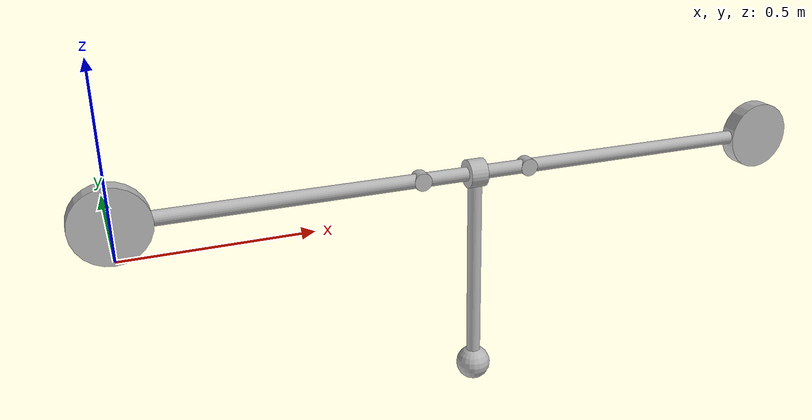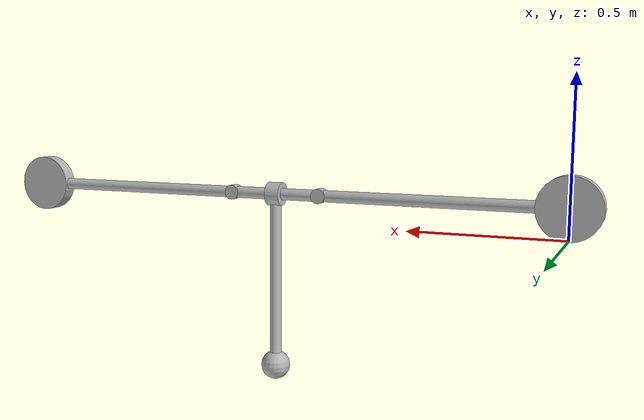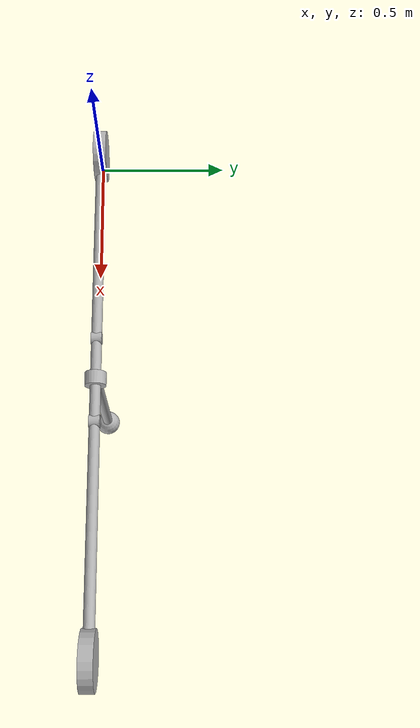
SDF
<?xml version='1.0' ?>

<sdf version='1.6'>
    <model name='Whabot'>
        <link name='back_wheel'>
            <pose>0 0 0.1 0 0 0</pose>
            <inertial>
                <mass>4.0</mass>
                <inertia>
                    <ixx>0.010833333333333335</ixx>
                    <iyy>0.020000000000000004</iyy>
                    <izz>0.010833333333333335</izz>
                    <ixy>0</ixy><ixz>0</ixz><iyz>0</iyz>
                </inertia>
            </inertial>
            <visual name='back_wheel_vis'>
                <pose>0 0 0 1.570795 0 0</pose>
                <geometry>
                    <cylinder>
                        <radius>0.1</radius>
                        <length>0.05</length>
                    </cylinder>
                </geometry>
            </visual>
            <collision name='back_wheel_col'>
                <pose>0 0 0 1.570795 0 0</pose>
                <geometry>
                    <cylinder>
                        <radius>0.1</radius>
                        <length>0.05</length>
                    </cylinder>
                </geometry>
            </collision>
        </link>

        <link name='link1'>
            <pose>0 0 0.1 0 0 0</pose>
            <inertial>
                <mass>0.1</mass>
                <inertia>
                    <ixx>1.0e-20</ixx>
                    <iyy>0.005333333333333334</iyy>
                    <izz>0.005333333333333334</izz>
                    <ixy>0</ixy><ixz>0</ixz><iyz>0</iyz>
                </inertia>
            </inertial>
            <visual name='link1_vis'>
                <pose>0.4 0 0 0 1.570795 0</pose>
                <geometry>
                    <cylinder>
                        <radius>0.02</radius>
                        <length>0.8</length>
                    </cylinder>
                </geometry>
            </visual>
        </link>

        <link name='motor1'>
            <pose>0.8 0 0.1 0 0 0</pose>
            <inertial>
                <mass>0.4</mass>
                <inertia>
                    <ixx>0.00011583333333333335</ixx>
                    <iyy>0.00012500000000000003</iyy>
                    <izz>0.00011583333333333335</izz>
                    <ixy>0</ixy><ixz>0</ixz><iyz>0</iyz>
                </inertia>
            </inertial>
            <visual name='vis_motor1'>
                <pose>0 0 0 1.570795 0 0</pose>
                <geometry>
                    <cylinder>
                        <radius>0.025</radius>
                        <length>0.04</length>
                    </cylinder>
                </geometry>
            </visual>
        </link>

        <link name='link2'>
            <pose>0.8 0 0.1 0 0 0</pose>
            <inertial>
                <mass>0.1</mass>
                <inertia>
                    <ixx>1.0e-20</ixx>
                    <iyy>0.0008533333333333333</iyy>
                    <izz>0.0008533333333333333</izz>
                    <ixy>0</ixy><ixz>0</ixz><iyz>0</iyz>
                </inertia>
            </inertial>
            <visual name='link2_vis'>
                <pose>0.16 0 0 0 1.570795 0</pose>
                <geometry>
                    <cylinder>
                        <radius>0.02</radius>
                        <length>0.32</length>
                    </cylinder>
                </geometry>
            </visual>
        </link>

        <link name='motor2'>
            <pose>1.12 0 0.1 0 0 0</pose>
            <inertial>
                <mass>0.4</mass>
                <inertia>
                    <ixx>0.00011583333333333335</ixx>
                    <iyy>0.00012500000000000003</iyy>
                    <izz>0.00011583333333333335</izz>
                    <ixy>0</ixy><ixz>0</ixz><iyz>0</iyz>
                </inertia>
            </inertial>
            <visual name='vis_motor2'>
                <pose>0 0 0 1.570795 0 0</pose>
                <geometry>
                    <cylinder>
                        <radius>0.025</radius>
                        <length>0.04</length>
                    </cylinder>
                </geometry>
            </visual>
        </link>

        <link name='link3'>
            <pose>1.12 0 0.1 0 0 0</pose>
            <inertial>
                <mass>0.1</mass>
                <inertia>
                    <ixx>1.0e-20</ixx>
                    <iyy>0.005333333333333334</iyy>
                    <izz>0.005333333333333334</izz>
                    <ixy>0</ixy><ixz>0</ixz><iyz>0</iyz>
                </inertia>
            </inertial>
            <visual name='link3_vis'>
                <pose>0.4 0 0 0 1.570795 0</pose>
                <geometry>
                    <cylinder>
                        <radius>0.02</radius>
                        <length>0.8</length>
                    </cylinder>
                </geometry>
            </visual>
        </link>

        <link name='front_wheel'>
            <pose>1.9200000000000002 0 0.1 0 0 0</pose>
            <inertial>
                <mass>4.0</mass>
                <inertia>
                    <ixx>0.010833333333333335</ixx>
                    <iyy>0.020000000000000004</iyy>
                    <izz>0.010833333333333335</izz>
                    <ixy>0</ixy><ixz>0</ixz><iyz>0</iyz>
                </inertia>
            </inertial>
            <visual name='front_wheel_vis'>
                <pose>0 0 0 1.570795 0 0</pose>
                <geometry>
                    <cylinder>
                        <radius>0.1</radius>
                        <length>0.05</length>
                    </cylinder>
                </geometry>
            </visual>
            <collision name='front_wheel_col'>
                <pose>0 0 0 1.570795 0 0</pose>
                <geometry>
                    <cylinder>
                        <radius>0.1</radius>
                        <length>0.05</length>
                    </cylinder>
                </geometry>
            </collision>
        </link>

        <link name='motorb'>
            <pose>0.9600000000000001 0 0.1 0 0 0</pose>
            <inertial>
                <mass>0.4</mass>
                <inertia>
                    <ixx>0.00032</ixx>
                    <iyy>0.00024333333333333336</iyy>
                    <izz>0.00024333333333333336</izz>
                    <ixy>0</ixy><ixz>0</ixz><iyz>0</iyz>
                </inertia>
            </inertial>
            <visual name='vis_motorb'>
                <pose>0 0 0 0 1.570795 0</pose>
                <geometry>
                    <cylinder>
                        <radius>0.04</radius>
                        <length>0.05</length>
                    </cylinder>
                </geometry>
            </visual>
        </link>

        <link name='linkb'>
            <pose>0.9600000000000001 0 0.1 0 0 0</pose>
            <inertial>
                <mass>0.1</mass>
                <inertia>
                    <ixx>0.003</ixx>
                    <iyy>0.003</iyy>
                    <izz>1.0e-20</izz>
                    <ixy>0</ixy><ixz>0</ixz><iyz>0</iyz>
                </inertia>
            </inertial>
            <visual name='linkb_vis'>
                <pose>0 0 -0.3 0 0 0</pose>
                <geometry>
                    <cylinder>
                        <radius>0.02</radius>
                        <length>0.6</length>
                    </cylinder>
                </geometry>
            </visual>
        </link>

        <link name='battery'>
            <pose>0.9600000000000001 0 -0.5 0 0 0</pose>
            <inertial>
                <mass>4.0</mass>
                <inertia>
                    <ixx>1.0e-20</ixx>
                    <iyy>1.0e-20</iyy>
                    <izz>1.0e-20</izz>
                    <ixy>0</ixy><ixz>0</ixz><iyz>0</iyz>
                </inertia>
            </inertial>
            <visual name='battery_vis'>
                <pose>0 0 0 0 0 0</pose>
                <geometry>
                    <sphere>
                        <radius>0.05</radius>
                    </sphere>
                </geometry>
            </visual>
        </link>

        <joint name='fix_back_wheel' type='fixed'>
            <parent>world</parent>
            <child>back_wheel</child>
        </joint>

        <joint name='theta1' type='revolute'>
            <parent>back_wheel</parent>
            <child>link1</child>
            <pose>0 0 0 0 0 0</pose>
            <axis>
                <xyz>0 1 0 0 0 0</xyz>
            </axis>
        </joint>

        <joint name='motor1_fix' type='fixed'>
            <parent>link1</parent>
            <child>motor1</child>
        </joint>

        <joint name='theta2' type='revolute'>
            <parent>motor1</parent>
            <child>link2</child>
            <pose>0 0 0 0 0 0</pose>
            <axis>
                <xyz>0 1 0 0 0 0</xyz>
            </axis>
        </joint>

        <joint name='motor2_fix' type='fixed'>
            <parent>link2</parent>
            <child>motor2</child>
        </joint>

        <joint name='theta3' type='revolute'>
            <parent>motor2</parent>
            <child>link3</child>
            <pose>0 0 0 0 0 0</pose>
            <axis>
                <xyz>0 1 0 0 0 0</xyz>
            </axis>
        </joint>

        <joint name='theta4' type='revolute'>
            <parent>link3</parent>
            <child>front_wheel</child>
            <pose>0 0 0 0 0 0</pose>
            <axis>
                <xyz>0 1 0 0 0 0</xyz>
            </axis>
        </joint>

        <joint name='front_wheel_slider' type='prismatic'>
            <parent>world</parent>
            <child>front_wheel</child>
            <pose>0 0 0 0 0 0</pose>
            <axis>
                <xyz>0 0 1 0 0 0</xyz>
            </axis>
        </joint>

        <joint name='motorb_fix' type='fixed'>
            <parent>link2</parent>
            <child>motorb</child>
        </joint>

        <joint name='battery_fix' type='fixed'>
            <parent>linkb</parent>
            <child>battery</child>
        </joint>

        <joint name='phi' type='revolute'>
            <parent>motorb</parent>
            <child>linkb</child>
            <pose>0 0 0 0 0 0</pose>
            <axis>
                <xyz>0 0 1 0 0 0</xyz>
            </axis>
        </joint>

    </model>
</sdf>
